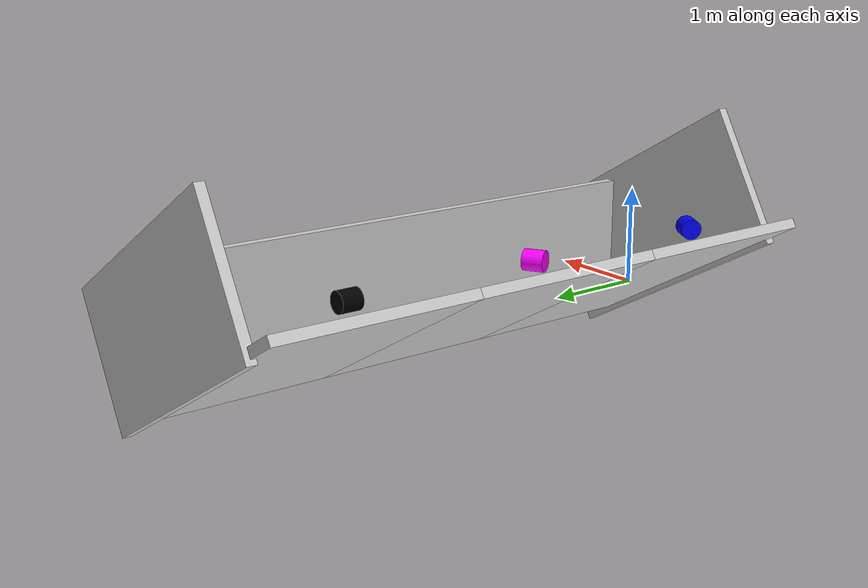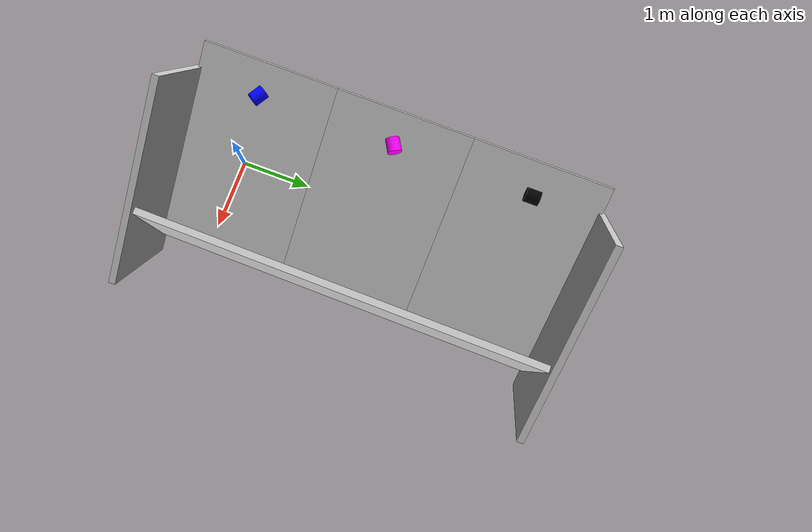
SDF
<?xml version="1.0" ?>

<!--
  Generated from distributed_rolling.erb.sdf

  - primary: true
  - secondary: true
  - performers: 3
  - seed: 3

-->
<sdf version="1.6">
  <world name="default">

    <plugin
     filename="libignition-gazebo-physics-system.so"
     name="ignition::gazebo::systems::Physics">
    </plugin>

    <plugin
      filename="libignition-gazebo-scene-broadcaster-system.so"
      name="ignition::gazebo::systems::SceneBroadcaster">
    </plugin>

    <gui fullscreen="0">

      <!-- 3D scene -->
      <plugin filename="Scene3D" name="3D View">
        <ignition-gui>
          <title>3D View</title>
          <property type="bool" key="showTitleBar">false</property>
          <property type="string" key="state">docked</property>
        </ignition-gui>

        <engine>ogre</engine>
        <scene>scene</scene>
        <ambient_light>0.4 0.4 0.4</ambient_light>
        <background_color>0.8 0.8 0.8</background_color>
        <camera_pose>-6 0 6 0 0.5 0</camera_pose>
        <service>/world/default/scene/info</service>
        <pose_topic>/world/default/pose/info</pose_topic>
        <scene_topic>/world/default/scene/info</scene_topic>
        <deletion_topic>/world/default/scene/deletion</deletion_topic>
      </plugin>

      <!-- World control -->
      <plugin filename="WorldControl" name="World control">
        <ignition-gui>
          <title>World control</title>
          <property type="bool" key="showTitleBar">false</property>
          <property type="bool" key="resizable">false</property>
          <property type="double" key="height">72</property>
          <property type="double" key="width">121</property>
          <property type="double" key="z">1</property>

          <property type="string" key="state">floating</property>
          <anchors target="3D View">
            <line own="left" target="left"/>
            <line own="bottom" target="bottom"/>
          </anchors>
        </ignition-gui>

        <play_pause>true</play_pause>
        <step>true</step>
        <start_paused>true</start_paused>
        <service>/world/default/control</service>
        <stats_topic>/world/default/stats</stats_topic>

      </plugin>

      <!--World statistics -->
      <plugin filename="WorldStats" name="World stats">
        <ignition-gui>
          <title>World stats</title>
          <property type="bool" key="showTitleBar">false</property>
          <property type="bool" key="resizable">false</property>
          <property type="double" key="height">110</property>
          <property type="double" key="width">290</property>
          <property type="double" key="z">1</property>

          <property type="string" key="state">floating</property>
          <anchors target="3D View">
            <line own="right" target="right"/>
            <line own="bottom" target="bottom"/>
          </anchors>
        </ignition-gui>

        <sim_time>true</sim_time>
        <real_time>true</real_time>
        <real_time_factor>true</real_time_factor>
        <iterations>true</iterations>
        <topic>/world/default/stats</topic>

      </plugin>

    </gui>

    <scene>
      <ambient>0.8 0.8 0.8 1.0</ambient>
      <background>0.34 0.39 0.43 1.0</background>
      <grid>false</grid>
      <origin_visual>false</origin_visual>
    </scene>

    <light type="directional" name="sun">
      <cast_shadows>true</cast_shadows>
      <pose>0 0 10 0 0 0</pose>
      <diffuse>0.8 0.8 0.8 1</diffuse>
      <specular>0.2 0.2 0.2 1</specular>
      <attenuation>
        <range>1000</range>
        <constant>0.9</constant>
        <linear>0.01</linear>
        <quadratic>0.001</quadratic>
      </attenuation>
      <direction>-0.5 0.1 -0.9</direction>
    </light>

    <model name="model_1">
      <pose>
        -0.799038105676658
        0.0
        0.7499999999999999
        1.5707963267948966
        0
        1.0471975511965976
      </pose>
      <link name="link">
        <inertial>
      <mass>0.015393804002589993</mass>
      <inertia>
        <ixx>8.97971900151083e-05</ixx>
        <iyy>8.97971900151083e-05</iyy>
        <izz>7.696902001294998e-05</izz>
        <ixy>0.0</ixy>
        <ixz>0.0</ixz>
        <iyz>0.0</iyz>
      </inertia>
    </inertial>

        <collision name="collision">
          <geometry>
       <cylinder>
         <radius>
           0.1
         </radius>
         <length>
           0.2
         </length>
        </cylinder>
      </geometry>

        </collision>
        <visual name="visual">
          <geometry>
       <cylinder>
         <radius>
           0.1
         </radius>
         <length>
           0.2
         </length>
        </cylinder>
      </geometry>

          <material>
            <diffuse>
              0
              0
              1
              1
            </diffuse>
            <specular>
              1
              0
              0
              1
            </specular>
            <ambient>
              0
              1
              1
              1
            </ambient>
          </material>
        </visual>
      </link>
    </model>

    <model name="model_2">
      <pose>
        -0.799038105676658
        2.0
        0.7499999999999999
        1.5707963267948966
        0
        2.0943951023931953
      </pose>
      <link name="link">
        <inertial>
      <mass>0.015393804002589993</mass>
      <inertia>
        <ixx>8.97971900151083e-05</ixx>
        <iyy>8.97971900151083e-05</iyy>
        <izz>7.696902001294998e-05</izz>
        <ixy>0.0</ixy>
        <ixz>0.0</ixz>
        <iyz>0.0</iyz>
      </inertia>
    </inertial>

        <collision name="collision">
          <geometry>
       <cylinder>
         <radius>
           0.1
         </radius>
         <length>
           0.2
         </length>
        </cylinder>
      </geometry>

        </collision>
        <visual name="visual">
          <geometry>
       <cylinder>
         <radius>
           0.1
         </radius>
         <length>
           0.2
         </length>
        </cylinder>
      </geometry>

          <material>
            <diffuse>
              1
              0
              1
              1
            </diffuse>
            <specular>
              1
              1
              0
              1
            </specular>
            <ambient>
              1
              1
              0
              1
            </ambient>
          </material>
        </visual>
      </link>
    </model>

    <model name="model_3">
      <pose>
        -0.799038105676658
        4.0
        0.7499999999999999
        1.5707963267948966
        0
        3.141592653589793
      </pose>
      <link name="link">
        <inertial>
      <mass>0.015393804002589993</mass>
      <inertia>
        <ixx>8.97971900151083e-05</ixx>
        <iyy>8.97971900151083e-05</iyy>
        <izz>7.696902001294998e-05</izz>
        <ixy>0.0</ixy>
        <ixz>0.0</ixz>
        <iyz>0.0</iyz>
      </inertia>
    </inertial>

        <collision name="collision">
          <geometry>
       <cylinder>
         <radius>
           0.1
         </radius>
         <length>
           0.2
         </length>
        </cylinder>
      </geometry>

        </collision>
        <visual name="visual">
          <geometry>
       <cylinder>
         <radius>
           0.1
         </radius>
         <length>
           0.2
         </length>
        </cylinder>
      </geometry>

          <material>
            <diffuse>
              0
              0
              0
              1
            </diffuse>
            <specular>
              1
              1
              0
              1
            </specular>
            <ambient>
              0
              0
              1
              1
            </ambient>
          </material>
        </visual>
      </link>
    </model>

    <model name="block_0_0">
      <static>true</static>
      <pose>0.0 0.0 0.0 0 0.5235987755982988 0</pose>
      <link name="link">
        <collision name="collision">
          <geometry>
       <box>
         <size>
           3
           2.0
           0.1
         </size>
        </box>
      </geometry>

        </collision>
        <visual name="visual">
          <geometry>
       <box>
         <size>
           3
           2.0
           0.1
         </size>
        </box>
      </geometry>

          <material>
            <ambient>0.8 0.8 0.8 1</ambient>
            <diffuse>0.8 0.8 0.8 1</diffuse>
            <specular>0.8 0.8 0.8 1</specular>
          </material>
        </visual>
      </link>
    </model>

    <model name="block_0_1">
      <static>true</static>
      <pose>0.0 2.0 0.0 0 0.5235987755982988 0</pose>
      <link name="link">
        <collision name="collision">
          <geometry>
       <box>
         <size>
           3
           2.0
           0.1
         </size>
        </box>
      </geometry>

        </collision>
        <visual name="visual">
          <geometry>
       <box>
         <size>
           3
           2.0
           0.1
         </size>
        </box>
      </geometry>

          <material>
            <ambient>0.8 0.8 0.8 1</ambient>
            <diffuse>0.8 0.8 0.8 1</diffuse>
            <specular>0.8 0.8 0.8 1</specular>
          </material>
        </visual>
      </link>
    </model>

    <model name="block_0_2">
      <static>true</static>
      <pose>0.0 4.0 0.0 0 0.5235987755982988 0</pose>
      <link name="link">
        <collision name="collision">
          <geometry>
       <box>
         <size>
           3
           2.0
           0.1
         </size>
        </box>
      </geometry>

        </collision>
        <visual name="visual">
          <geometry>
       <box>
         <size>
           3
           2.0
           0.1
         </size>
        </box>
      </geometry>

          <material>
            <ambient>0.8 0.8 0.8 1</ambient>
            <diffuse>0.8 0.8 0.8 1</diffuse>
            <specular>0.8 0.8 0.8 1</specular>
          </material>
        </visual>
      </link>
    </model>

    <model name="end_block">
      <static>true</static>
      <pose>
        1.299038105676658
        2.0
        0.0
        0
        0
        0
      </pose>
      <link name="link">
        <collision name="collision">
          <geometry>
       <box>
         <size>
           0.1
           6.0
           1.4999999999999998
         </size>
        </box>
      </geometry>

        </collision>
        <visual name="visual">
          <geometry>
       <box>
         <size>
           0.1
           6.0
           1.4999999999999998
         </size>
        </box>
      </geometry>

          <material>
            <ambient>0.8 0.8 0.8 1</ambient>
            <diffuse>0.8 0.8 0.8 1</diffuse>
            <specular>0.8 0.8 0.8 1</specular>
          </material>
        </visual>
      </link>
    </model>

    <model name="side_block_A">
      <static>true</static>
      <pose>
        0.649519052838329
        -1.0
        0.37499999999999994
        0
        0.5235987755982988
        0
      </pose>
      <link name="link">
        <collision name="collision">
          <geometry>
       <box>
         <size>
           3
           0.1
           1.4999999999999998
         </size>
        </box>
      </geometry>

        </collision>
        <visual name="visual">
          <geometry>
       <box>
         <size>
           3
           0.1
           1.4999999999999998
         </size>
        </box>
      </geometry>

          <material>
            <ambient>0.8 0.8 0.8 1</ambient>
            <diffuse>0.8 0.8 0.8 1</diffuse>
            <specular>0.8 0.8 0.8 1</specular>
          </material>
        </visual>
      </link>
    </model>

    <model name="side_block_B">
      <static>true</static>
      <pose>
        0.649519052838329
        5.0
        0.37499999999999994
        0
        0.5235987755982988
        0
      </pose>
      <link name="link">
        <collision name="collision">
          <geometry>
       <box>
         <size>
           3
           0.1
           1.4999999999999998
         </size>
        </box>
      </geometry>

        </collision>
        <visual name="visual">
          <geometry>
       <box>
         <size>
           3
           0.1
           1.4999999999999998
         </size>
        </box>
      </geometry>

          <material>
            <ambient>0.8 0.8 0.8 1</ambient>
            <diffuse>0.8 0.8 0.8 1</diffuse>
            <specular>0.8 0.8 0.8 1</specular>
          </material>
        </visual>
      </link>
    </model>

    <plugin name="ignition::gazebo" filename="dummy">

      <performer name="perf_1">
        <ref>model_1</ref>
        <geometry>
          <box>
            <size>
              0.5
              0.5
              0.5
            </size>
          </box>
        </geometry>
      </performer>

      <performer name="perf_2">
        <ref>model_2</ref>
        <geometry>
          <box>
            <size>
              0.5
              0.5
              0.5
            </size>
          </box>
        </geometry>
      </performer>

      <performer name="perf_3">
        <ref>model_3</ref>
        <geometry>
          <box>
            <size>
              0.5
              0.5
              0.5
            </size>
          </box>
        </geometry>
      </performer>

    <level name="level_block_0_0">
      <pose>0.0 0.0 0.0 0 0 0</pose>
      <geometry>
        <box>
          <size>3 2.0 1.4999999999999998</size>
        </box>
      </geometry>
      <buffer>1.0</buffer>
      <ref>block_0_0</ref>
    </level>

    <level name="level_block_0_1">
      <pose>0.0 2.0 0.0 0 0 0</pose>
      <geometry>
        <box>
          <size>3 2.0 1.4999999999999998</size>
        </box>
      </geometry>
      <buffer>1.0</buffer>
      <ref>block_0_1</ref>
    </level>

    <level name="level_block_0_2">
      <pose>0.0 4.0 0.0 0 0 0</pose>
      <geometry>
        <box>
          <size>3 2.0 1.4999999999999998</size>
        </box>
      </geometry>
      <buffer>1.0</buffer>
      <ref>block_0_2</ref>
    </level>

    </plugin>

  </world>
</sdf>
